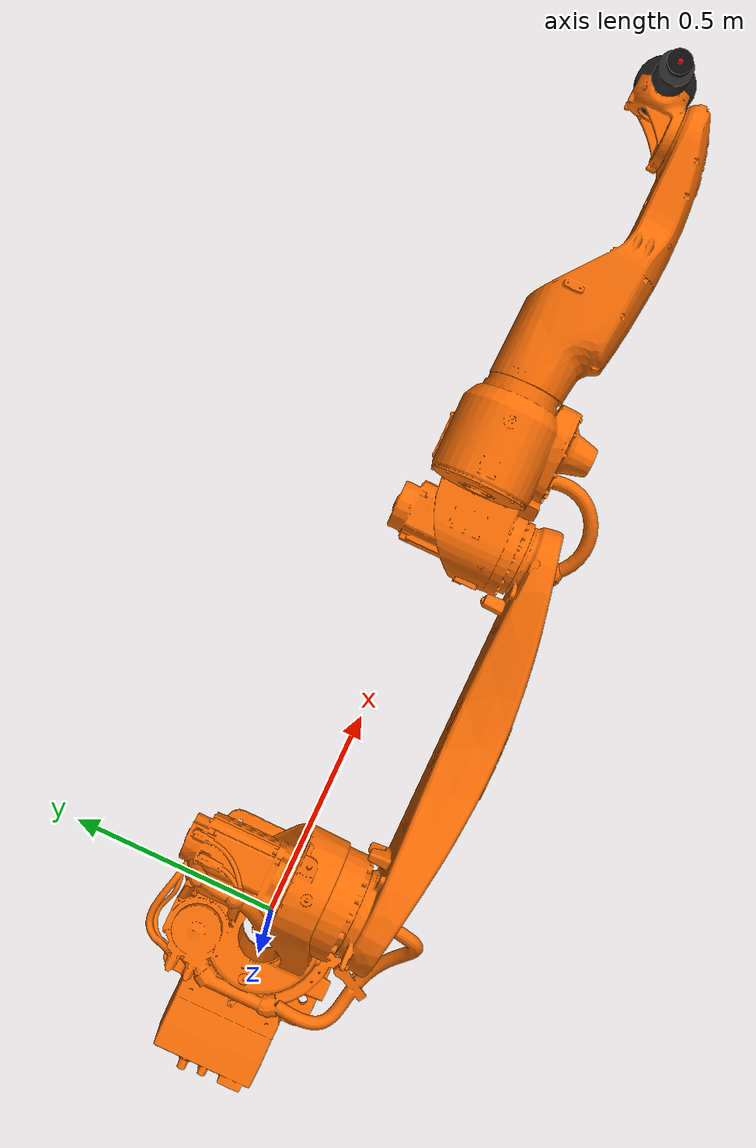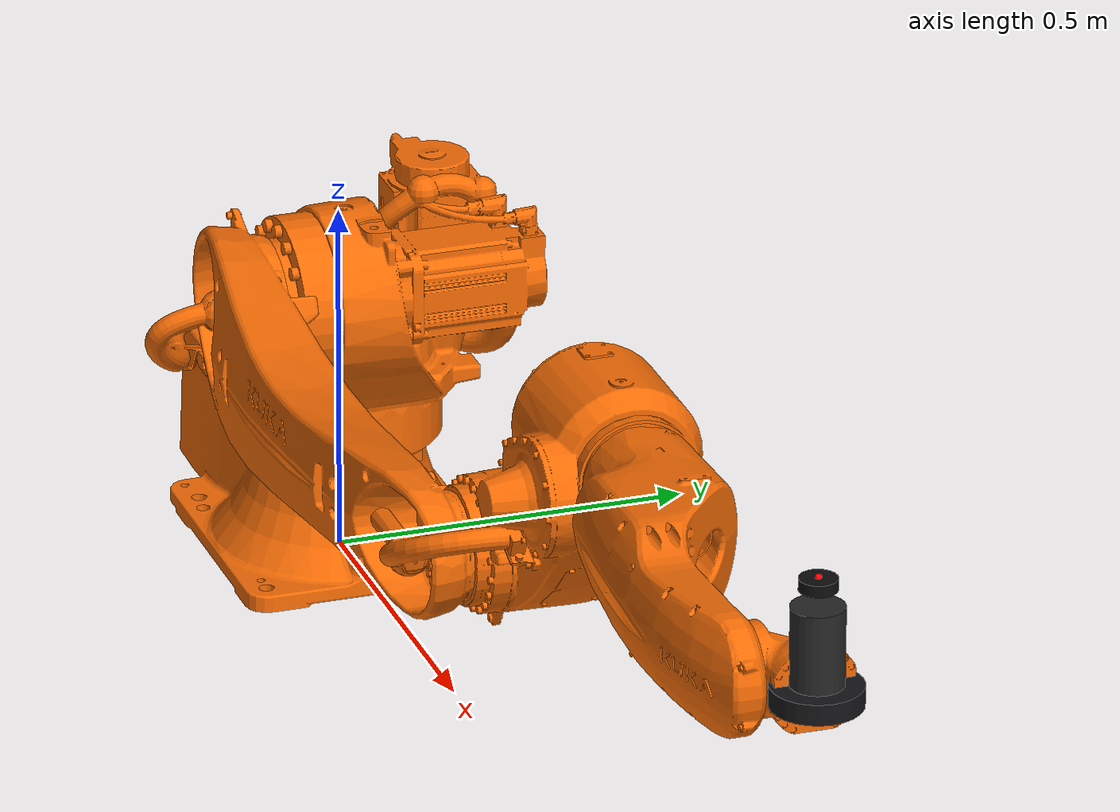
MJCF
<mujoco model="kr35_r1840_3_hw">
  <compiler angle="radian" autolimits="true"/>
  <option gravity="0 0 -9.81" integrator="implicitfast"/>
  <asset>
    <mesh name="base_link_visual" file="meshes/kr35/visual/base_link.stl"/>
    <mesh name="base_link_collision" file="meshes/kr35/collision/base_link.stl"/>
    <mesh name="link_1_visual" file="meshes/kr35/visual/link_1.stl"/>
    <mesh name="link_1_collision" file="meshes/kr35/collision/link_1.stl"/>
    <mesh name="link_2_visual" file="meshes/kr35/visual/link_2.stl"/>
    <mesh name="link_2_collision" file="meshes/kr35/collision/link_2.stl"/>
    <mesh name="link_3_visual" file="meshes/kr35/visual/link_3.stl"/>
    <mesh name="link_3_collision" file="meshes/kr35/collision/link_3.stl"/>
    <mesh name="link_4_visual" file="meshes/kr35/visual/link_4.stl"/>
    <mesh name="link_4_collision" file="meshes/kr35/collision/link_4.stl"/>
    <mesh name="link_5_visual" file="meshes/kr35/visual/link_5.stl"/>
    <mesh name="link_5_collision" file="meshes/kr35/collision/link_5.stl"/>
    <mesh name="link_6_visual" file="meshes/kr35/visual/link_6.stl"/>
    <mesh name="link_6_collision" file="meshes/kr35/collision/link_6.stl"/>
  </asset>
  <default>
    <default class="kr35_visual">
      <geom type="mesh" rgba="0.96 0.42 0.02 1" contype="0" conaffinity="0" group="2"/>
    </default>
    <default class="kr35_collision">
      <geom type="mesh" group="3" rgba="1 0 0 0.3"/>
    </default>
  </default>
  <worldbody>
    <body name="base_link" pos="0 0 0">
      <inertial pos="-0.008719 0.000062 0.150519" quat="0.976168 -0.057344 -0.209174 -0.007345" mass="53.7647" diaginertia="0.826710 1.053298 1.067619"/>
      <geom class="kr35_visual" mesh="base_link_visual" pos="0.000000 0.000000 0.000000" quat="1.000000 0.000000 0.000000 0.000000"/>
      <geom class="kr35_collision" mesh="base_link_collision" pos="0.000000 0.000000 0.000000" quat="1.000000 0.000000 0.000000 0.000000"/>
      <body name="link_1" pos="0.000000 0.000000 0.263800" quat="0.000000 1.000000 0.000000 0.000000">
        <joint name="joint_1" type="hinge" axis="0 0 1" range="-3.228859 3.228859" damping="40.0" frictionloss="4.0" armature="0.15"/>
        <inertial pos="0.071941 -0.016483 -0.104504" quat="0.908783 0.413553 -0.012372 -0.054170" mass="81.4493" diaginertia="1.629331 1.487907 1.864829"/>
        <geom class="kr35_visual" mesh="link_1_visual" pos="0.000000 -0.000000 0.263800" quat="0.000000 -1.000000 0.000000 0.000000"/>
        <geom class="kr35_collision" mesh="link_1_collision" pos="0.000000 -0.000000 0.263800" quat="0.000000 -1.000000 0.000000 0.000000"/>
        <body name="link_2" pos="0.150000 0.093500 -0.179700" quat="0.707107 0.707107 0.000000 0.000000">
          <joint name="joint_2" type="hinge" axis="0 0 1" range="-3.228859 1.134464" damping="40.0" frictionloss="4.0" armature="0.15"/>
          <inertial pos="0.303358 -0.000480 -0.070226" quat="0.474656 -0.536101 -0.525170 -0.459885" mass="53.7270" diaginertia="5.991676 0.346568 6.013414"/>
          <geom class="kr35_visual" mesh="link_2_visual" pos="-0.443500 -0.150000 0.093500" quat="0.500000 0.500000 0.500000 0.500000"/>
          <geom class="kr35_collision" mesh="link_2_collision" pos="-0.443500 -0.150000 0.093500" quat="0.500000 0.500000 0.500000 0.500000"/>
          <body name="link_3" pos="0.810000 0.000000 -0.022500" quat="1.000000 0.000000 0.000000 0.000000">
            <joint name="joint_3" type="hinge" axis="0 0 1" range="-2.094395 3.106686" damping="40.0" frictionloss="4.0" armature="0.15"/>
            <inertial pos="0.119104 -0.093792 0.091246" quat="0.827075 0.132839 -0.002410 0.546164" mass="33.3026" diaginertia="0.592468 0.464024 0.775008"/>
            <geom class="kr35_visual" mesh="link_3_visual" pos="-0.150000 1.253500 0.116000" quat="0.707107 0.707107 0.000000 0.000000"/>
            <geom class="kr35_collision" mesh="link_3_collision" pos="-0.150000 1.253500 0.116000" quat="0.707107 0.707107 0.000000 0.000000"/>
            <body name="link_4" pos="0.300000 -0.200000 0.116000" quat="0.500000 0.500000 -0.500000 -0.500000">
              <joint name="joint_4" type="hinge" axis="0 0 1" range="-3.141593 3.141593" damping="40.0" frictionloss="4.0" armature="0.15"/>
              <inertial pos="-0.000141 -0.075278 -0.290127" quat="-0.435848 -0.557723 0.533521 -0.462965" mass="15.3552" diaginertia="0.055357 0.314310 0.324704"/>
              <geom class="kr35_visual" mesh="link_4_visual" pos="-1.453500 0.000000 0.450000" quat="0.707107 0.000000 0.707107 -0.000000"/>
              <geom class="kr35_collision" mesh="link_4_collision" pos="-1.453500 0.000000 0.450000" quat="0.707107 0.000000 0.707107 -0.000000"/>
              <body name="link_5" pos="0.000000 -0.053000 -0.556900" quat="0.500000 -0.500000 0.500000 0.500000">
                <joint name="joint_5" type="hinge" axis="0 0 1" range="-3.141593 3.141593" damping="40.0" frictionloss="4.0" armature="0.15"/>
                <inertial pos="0.006770 -0.000050 -0.007140" quat="0.004313 0.391458 -0.006496 0.920163" mass="4.5900" diaginertia="0.008466 0.011115 0.012637"/>
                <geom class="kr35_visual" mesh="link_5_visual" pos="-1.006900 1.453500 0.053000" quat="0.707107 0.707107 -0.000000 -0.000000"/>
                <geom class="kr35_collision" mesh="link_5_collision" pos="-1.006900 1.453500 0.053000" quat="0.707107 0.707107 -0.000000 -0.000000"/>
                <body name="link_6" pos="0.051500 0.000000 0.053000" quat="0.500000 0.500000 -0.500000 -0.500000">
                  <joint name="joint_6" type="hinge" axis="0 0 1" range="-6.248279 6.248279" damping="40.0" frictionloss="4.0" armature="0.15"/>
                  <inertial pos="-0.000010 -0.000010 -0.019700" quat="0.708716 0.000113 -0.000009 -0.705494" mass="1.2400" diaginertia="0.001329 0.001239 0.002280"/>
                  <geom class="kr35_visual" mesh="link_6_visual" pos="-1.453500 -0.000000 1.058400" quat="0.707107 0.000000 0.707107 -0.000000"/>
                  <geom class="kr35_collision" mesh="link_6_collision" pos="-1.453500 -0.000000 1.058400" quat="0.707107 0.000000 0.707107 -0.000000"/>
                  <body name="flange" pos="0.000000 0.000000 -0.038500" quat="0.707107 0.000000 0.707107 0.000000">
                    <site name="flange_site" size="0.01" rgba="0 1 0 1"/>
                    <geom type="cylinder" size="0.06 0.014" pos="0 0 0" rgba="0.08 0.08 0.09 1" contype="0" conaffinity="0"/>
                    <body name="suction_gripper" pos="0 0 0">
                      <geom type="cylinder" size="0.035 0.06" pos="0 0 0.06" rgba="0.15 0.15 0.15 1" contype="0" conaffinity="0"/>
                      <body name="suction_cup" pos="0 0 0.15">
                        <geom name="suction_cup_geom" type="cylinder" size="0.025 0.008" rgba="0.05 0.05 0.05 1" friction="1.0 0.01 0.001" solimp="0.95 0.99 0.001" solref="0.004 1"/>
                        <site name="suction_site" pos="0 0 0.008" size="0.005" rgba="1 0 0 1"/>
                      </body>
                    </body>
                  </body>
                </body>
              </body>
            </body>
          </body>
        </body>
      </body>
    </body>
  </worldbody>
  <contact>
    <exclude body1="base_link" body2="link_1"/>
    <exclude body1="base_link" body2="link_2"/>
    <exclude body1="base_link" body2="link_3"/>
    <exclude body1="base_link" body2="link_4"/>
    <exclude body1="base_link" body2="link_5"/>
    <exclude body1="base_link" body2="link_6"/>
    <exclude body1="link_1" body2="link_2"/>
    <exclude body1="link_1" body2="link_3"/>
    <exclude body1="link_1" body2="link_4"/>
    <exclude body1="link_1" body2="link_5"/>
    <exclude body1="link_1" body2="link_6"/>
    <exclude body1="link_2" body2="link_3"/>
    <exclude body1="link_2" body2="link_4"/>
    <exclude body1="link_2" body2="link_5"/>
    <exclude body1="link_2" body2="link_6"/>
    <exclude body1="link_3" body2="link_4"/>
    <exclude body1="link_3" body2="link_5"/>
    <exclude body1="link_3" body2="link_6"/>
    <exclude body1="link_4" body2="link_5"/>
    <exclude body1="link_4" body2="link_6"/>
    <exclude body1="link_5" body2="link_6"/>
  </contact>
  <actuator>
    <position name="act_joint_1" joint="joint_1" kp="200000" kv="12000" ctrlrange="-3.228859 3.228859" forcerange="-1920.000 1920.000"/>
    <position name="act_joint_2" joint="joint_2" kp="200000" kv="12000" ctrlrange="-3.228859 1.134464" forcerange="-1721.000 1721.000"/>
    <position name="act_joint_3" joint="joint_3" kp="200000" kv="12000" ctrlrange="-2.094395 3.106686" forcerange="-692.794 692.794"/>
    <position name="act_joint_4" joint="joint_4" kp="200000" kv="12000" ctrlrange="-3.141593 3.141593" forcerange="-134.259 134.259"/>
    <position name="act_joint_5" joint="joint_5" kp="200000" kv="12000" ctrlrange="-3.141593 3.141593" forcerange="-152.721 152.721"/>
    <position name="act_joint_6" joint="joint_6" kp="200000" kv="12000" ctrlrange="-6.248279 6.248279" forcerange="-68.639 68.639"/>
  </actuator>
  <sensor>
    <touch name="suction_touch" site="suction_site"/>
    <jointpos name="sensor_joint_1_pos" joint="joint_1"/>
    <jointpos name="sensor_joint_2_pos" joint="joint_2"/>
    <jointpos name="sensor_joint_3_pos" joint="joint_3"/>
    <jointpos name="sensor_joint_4_pos" joint="joint_4"/>
    <jointpos name="sensor_joint_5_pos" joint="joint_5"/>
    <jointpos name="sensor_joint_6_pos" joint="joint_6"/>
  </sensor>
</mujoco>
